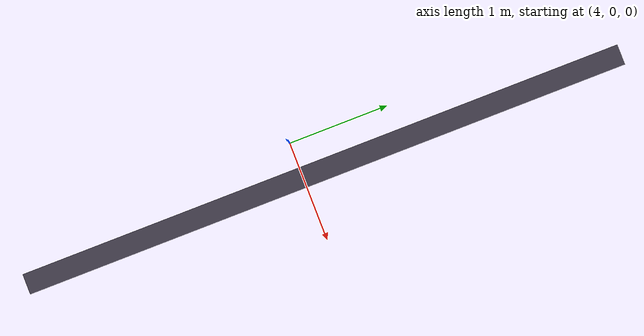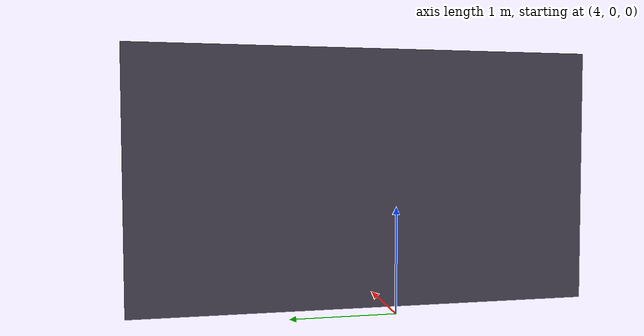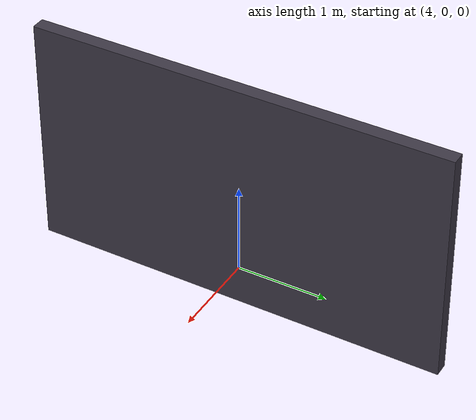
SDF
<?xml version='1.0'?>
<sdf version='1.7'>
  <model name='wall'>
    <pose>2.2275 0.205 0 0 -0 0</pose>
    <link name='Wall_1'>
      <collision name='Wall_1_Collision'>
        <geometry>
          <box>
            <size>4.5 0.15 2.5</size>
          </box>
        </geometry>
        <pose>0 0 1.25 0 -0 0</pose>
      </collision>
      <visual name='Wall_1_Visual'>
        <pose>0 0 1.25 0 -0 0</pose>
        <geometry>
          <box>
            <size>4.5 0.15 2.5</size>
          </box>
        </geometry>
        <material>
          <script>
            <uri>file://media/materials/scripts/gazebo.material</uri>
            <name>Gazebo/Grey</name>
          </script>
          <ambient>0.239216 0.219608 0.27451 1</ambient>
        </material>
        <meta>
          <layer>0</layer>
        </meta>
      </visual>
      <pose>2.1525 0 0 0 -0 1.5708</pose>
    </link>
    <static>1</static>
  </model>
</sdf>
